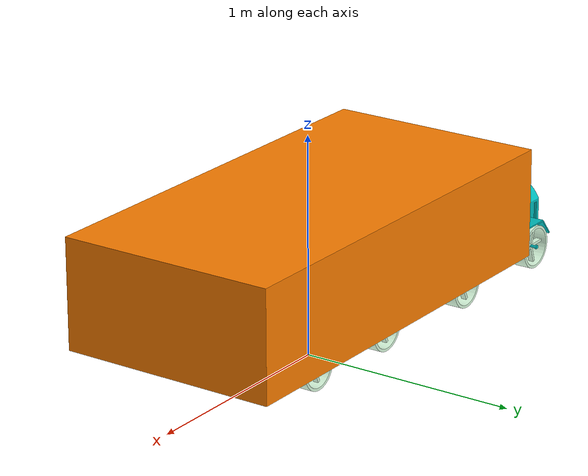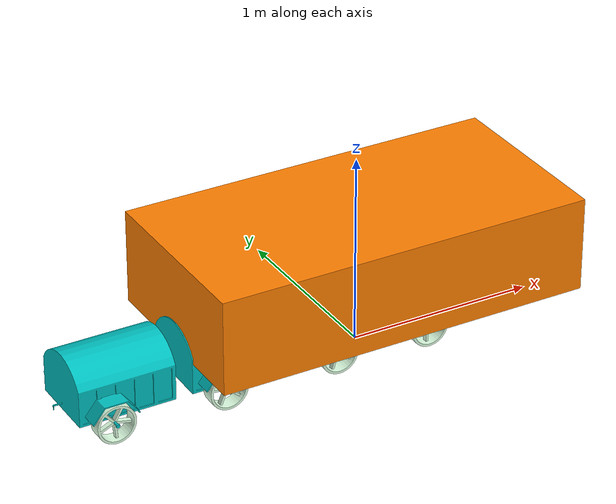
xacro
<?xml version="1.0" ?>
<robot name="car_2trailers" xmlns:xacro="http://ros.org/wiki/xacro">
  <link
    name="base_link">
    <inertial>
      <origin
        xyz="-0.0249685047950147 5.80525389981545E-08 0.308263797377902"
        rpy="0 0 0" />
      <mass
        value="161.296548099246" />
      <inertia
        ixx="5.74333133466386"
        ixy="-9.54396368857945E-07"
        ixz="0.715979259888364"
        iyy="11.1969077807859"
        iyz="2.58090746431264E-07"
        izz="11.8625970706263" />
    </inertial>
    <visual>
      <origin
        xyz="0 0 0.5"
        rpy="0 0 0" />
      <geometry>
        <box size="2.0 1.0 0.5"/>
      </geometry>
      <material
        name="bright_orange">
        <color
          rgba="1 0.5 0 1" />
      </material>
    </visual>
    <visual>
      <origin
        xyz="0 0 0"
        rpy="0 0 0" />
      <geometry>
        <mesh
          filename="file:///home/shanthosh/Downloads/ros2_ws/install/car_trailer/share/car_trailer/meshes/base_link.STL" />
      </geometry>
      <material
        name="">
        <color
          rgba="0.486274509803922 0.235294117647059 0.0156862745098039 1" />
      </material>
    </visual>
    <collision>
      <origin
        xyz="0 0 0"
        rpy="0 0 0" />
      <geometry>
        <mesh
          filename="file:///home/shanthosh/Downloads/ros2_ws/install/car_trailer/share/car_trailer/meshes/base_link.STL" />
      </geometry>
    </collision>
  </link>
  <link
    name="steer_right">
    <inertial>
      <origin
        xyz="0 0 -0.0522691419902046"
        rpy="0 0 0" />
      <mass
        value="0.0438861509536143" />
      <inertia
        ixx="0.000179638239128964"
        ixy="-3.09530314377121E-21"
        ixz="-3.82144225880298E-21"
        iyy="0.000124795414810826"
        iyz="-4.4765319312341E-20"
        izz="5.58982217166399E-05" />
    </inertial>
    <visual>
      <origin
        xyz="0 0 0"
        rpy="0 0 0" />
      <geometry>
        <mesh
          filename="file:///home/shanthosh/Downloads/ros2_ws/install/car_trailer/share/car_trailer/meshes/steer_right.STL" />
      </geometry>
      <material
        name="">
        <color
          rgba="0.792156862745098 0.819607843137255 0.933333333333333 1" />
      </material>
    </visual>
    <collision>
      <origin
        xyz="0 0 0"
        rpy="0 0 0" />
      <geometry>
        <mesh
          filename="file:///home/shanthosh/Downloads/ros2_ws/install/car_trailer/share/car_trailer/meshes/steer_right.STL" />
      </geometry>
    </collision>
  </link>
  <joint
    name="steer_right_joint"
    type="continuous">
    <origin
      xyz="0.2834 -0.2159 0.2159"
      rpy="0 0 0" />
    <parent
      link="base_link" />
    <child
      link="steer_right" />
    <axis
      xyz="0 0 1" />
  </joint>
  <link
    name="wheel_front_right">
    <inertial>
      <origin
        xyz="-1.11022302462516E-16 -2.22044604925031E-16 2.22044604925031E-16"
        rpy="0 0 0" />
      <mass
        value="0.710749711059187" />
      <inertia
        ixx="0.00311542211207417"
        ixy="-4.40252816370023E-19"
        ixz="4.89078291990205E-19"
        iyy="0.00565621280352888"
        iyz="-1.08879834757985E-19"
        izz="0.00311542211207417" />
    </inertial>
    <visual>
      <origin
        xyz="0 0 0"
        rpy="0 0 0" />
      <geometry>
        <mesh
          filename="file:///home/shanthosh/Downloads/ros2_ws/install/car_trailer/share/car_trailer/meshes/wheel_front_right.STL" />
      </geometry>
      <material
        name="">
        <color
          rgba="0.866666666666667 1 0.886274509803922 1" />
      </material>
    </visual>
    <collision>
      <origin
        xyz="0 0 0"
        rpy="0 0 0" />
      <geometry>
        <mesh
          filename="file:///home/shanthosh/Downloads/ros2_ws/install/car_trailer/share/car_trailer/meshes/wheel_front_right.STL" />
      </geometry>
    </collision>
  </link>
  <joint
    name="wheel_front_right_joint"
    type="continuous">
    <origin
      xyz="0 0 -0.1143"
      rpy="0 0 0" />
    <parent
      link="steer_right" />
    <child
      link="wheel_front_right" />
    <axis
      xyz="0 1 0" />
  </joint>
  <link
    name="steer_left">
    <inertial>
      <origin
        xyz="5.55111512312578E-17 0 -0.0522691419902048"
        rpy="0 0 0" />
      <mass
        value="0.0438861509536144" />
      <inertia
        ixx="0.000179638239128965"
        ixy="6.67787778044852E-21"
        ixz="1.53045847137605E-20"
        iyy="0.000124795414810826"
        iyz="1.34882992606323E-19"
        izz="5.58982217166401E-05" />
    </inertial>
    <visual>
      <origin
        xyz="0 0 0"
        rpy="0 0 0" />
      <geometry>
        <mesh
          filename="file:///home/shanthosh/Downloads/ros2_ws/install/car_trailer/share/car_trailer/meshes/steer_left.STL" />
      </geometry>
      <material
        name="">
        <color
          rgba="0.792156862745098 0.819607843137255 0.933333333333333 1" />
      </material>
    </visual>
    <collision>
      <origin
        xyz="0 0 0"
        rpy="0 0 0" />
      <geometry>
        <mesh
          filename="file:///home/shanthosh/Downloads/ros2_ws/install/car_trailer/share/car_trailer/meshes/steer_left.STL" />
      </geometry>
    </collision>
  </link>
  <joint
    name="steer_left_joint"
    type="continuous">
    <origin
      xyz="0.2834 0.2159 0.2159"
      rpy="0 0 0" />
    <parent
      link="base_link" />
    <child
      link="steer_left" />
    <axis
      xyz="0 0 1" />
  </joint>
  <link
    name="wheel_front_left">
    <inertial>
      <origin
        xyz="2.22044604925031E-16 -2.22044604925031E-16 3.33066907387547E-16"
        rpy="0 0 0" />
      <mass
        value="0.710749711059188" />
      <inertia
        ixx="0.00311542211207417"
        ixy="-1.78653899417237E-15"
        ixz="1.5015938906646E-18"
        iyy="0.00565621280352888"
        iyz="1.47159856276961E-19"
        izz="0.00311542211207417" />
    </inertial>
    <visual>
      <origin
        xyz="0 0 0"
        rpy="0 0 0" />
      <geometry>
        <mesh
          filename="file:///home/shanthosh/Downloads/ros2_ws/install/car_trailer/share/car_trailer/meshes/wheel_front_left.STL" />
      </geometry>
      <material
        name="">
        <color
          rgba="0.866666666666667 1 0.886274509803922 1" />
      </material>
    </visual>
    <collision>
      <origin
        xyz="0 0 0"
        rpy="0 0 0" />
      <geometry>
        <mesh
          filename="file:///home/shanthosh/Downloads/ros2_ws/install/car_trailer/share/car_trailer/meshes/wheel_front_left.STL" />
      </geometry>
    </collision>
  </link>
  <joint
    name="wheel_front_left_joint"
    type="continuous">
    <origin
      xyz="0 0 -0.1143"
      rpy="0 0 0" />
    <parent
      link="steer_left" />
    <child
      link="wheel_front_left" />
    <axis
      xyz="0 1 0" />
  </joint>
  <link
    name="wheel_rear_right">
    <inertial>
      <origin
        xyz="0 0 -2.22044604925031E-16"
        rpy="0 0 0" />
      <mass
        value="0.710749711059187" />
      <inertia
        ixx="0.00311542211207416"
        ixy="5.681866557744E-20"
        ixz="-7.15097397214017E-19"
        iyy="0.00565621280352888"
        iyz="1.34632008984562E-19"
        izz="0.00311542211207417" />
    </inertial>
    <visual>
      <origin
        xyz="0 0 0"
        rpy="0 0 0" />
      <geometry>
        <mesh
          filename="file:///home/shanthosh/Downloads/ros2_ws/install/car_trailer/share/car_trailer/meshes/wheel_rear_right.STL" />
      </geometry>
      <material
        name="">
        <color
          rgba="0.866666666666667 1 0.886274509803922 1" />
      </material>
    </visual>
    <collision>
      <origin
        xyz="0 0 0"
        rpy="0 0 0" />
      <geometry>
        <mesh
          filename="file:///home/shanthosh/Downloads/ros2_ws/install/car_trailer/share/car_trailer/meshes/wheel_rear_right.STL" />
      </geometry>
    </collision>
  </link>
  <joint
    name="wheel_rear_right_joint"
    type="continuous">
    <origin
      xyz="-0.23095 -0.21641 0.1016"
      rpy="0 0 0" />
    <parent
      link="base_link" />
    <child
      link="wheel_rear_right" />
    <axis
      xyz="0 1 0" />
  </joint>
  <link
    name="wheel_rear_left">
    <inertial>
      <origin
        xyz="-1.11022302462516E-16 2.22044604925031E-16 -2.22044604925031E-16"
        rpy="0 0 0" />
      <mass
        value="0.710749711059188" />
      <inertia
        ixx="0.00311542211207416"
        ixy="7.07076336508181E-20"
        ixz="3.24668390427075E-19"
        iyy="0.00565621280352888"
        iyz="4.18630405641039E-19"
        izz="0.00311542211207417" />
    </inertial>
    <visual>
      <origin
        xyz="0 0 0"
        rpy="0 0 0" />
      <geometry>
        <mesh
          filename="file:///home/shanthosh/Downloads/ros2_ws/install/car_trailer/share/car_trailer/meshes/wheel_rear_left.STL" />
      </geometry>
      <material
        name="">
        <color
          rgba="0.866666666666667 1 0.886274509803922 1" />
      </material>
    </visual>
    <collision>
      <origin
        xyz="0 0 0"
        rpy="0 0 0" />
      <geometry>
        <mesh
          filename="file:///home/shanthosh/Downloads/ros2_ws/install/car_trailer/share/car_trailer/meshes/wheel_rear_left.STL" />
      </geometry>
    </collision>
  </link>
  <joint
    name="wheel_rear_left_joint"
    type="continuous">
    <origin
      xyz="-0.23095 0.21641 0.1016"
      rpy="0 0 0" />
    <parent
      link="base_link" />
    <child
      link="wheel_rear_left" />
    <axis
      xyz="0 1 0" />
  </joint>
  <link
    name="lidar">
    <inertial>
      <origin
        xyz="0 0 0.0155633315213304"
        rpy="0 0 0" />
      <mass
        value="0.00148787861234503" />
      <inertia
        ixx="7.10305155736843E-08"
        ixy="5.87747175411144E-39"
        ixz="-1.65931870492747E-24"
        iyy="7.10305155736843E-08"
        iyz="3.73107524658215E-25"
        izz="1.94149419263025E-08" />
    </inertial>
    <visual>
      <origin
        xyz="0 0 0"
        rpy="0 0 0" />
      <geometry>
        <mesh
          filename="file:///home/shanthosh/Downloads/ros2_ws/install/car_trailer/share/car_trailer/meshes/lidar.STL" />
      </geometry>
      <material
        name="">
        <color
          rgba="1 0.831372549019608 0.0235294117647059 1" />
      </material>
    </visual>
    <collision>
      <origin
        xyz="0 0 0"
        rpy="0 0 0" />
      <geometry>
        <mesh
          filename="file:///home/shanthosh/Downloads/ros2_ws/install/car_trailer/share/car_trailer/meshes/lidar.STL" />
      </geometry>
    </collision>
  </link>
  <joint
    name="lidar_joint"
    type="prismatic">
    <origin
      xyz="-0.29518 0 0.5461"
      rpy="0 0 0" />
    <parent
      link="base_link" />
    <child
      link="lidar" />
    <axis
      xyz="0 1 0" />
    <limit
      lower="0"
      upper="0"
      effort="0"
      velocity="0" />
  </joint>
  <link
    name="trailer1">
    <inertial>
      <origin
        xyz="-0.299194633208472 -0.0013676434638723 0.116239025047718"
        rpy="0 0 0" />
      <mass
        value="51.8326464514157" />
      <inertia
        ixx="0.895288907489371"
        ixy="0.000190753586197387"
        ixz="-0.00176941019689681"
        iyy="1.45980983595813"
        iyz="-0.00311107541004565"
        izz="1.6642326822303" />
    </inertial>
    <visual>
      <origin
        xyz="0 0 0"
        rpy="0 0 0" />
      <geometry>
        <mesh
          filename="file:///home/shanthosh/Downloads/ros2_ws/install/car_trailer/share/car_trailer/meshes/trailer1.STL" />
      </geometry>
      <material
        name="">
        <color
          rgba="0 0.752941176470588 0.752941176470588 1" />
      </material>
    </visual>
    <collision>
      <origin
        xyz="0 0 0"
        rpy="0 0 0" />
      <geometry>
        <mesh
          filename="file:///home/shanthosh/Downloads/ros2_ws/install/car_trailer/share/car_trailer/meshes/trailer1.STL" />
      </geometry>
    </collision>
  </link>
  <joint
    name="trailer1_joint"
    type="continuous">
    <origin
      xyz="-0.4532 0 0.11113"
      rpy="0 0 0" />
    <parent
      link="base_link" />
    <child
      link="trailer1" />
    <axis
      xyz="0 0 1" />
  </joint>
  <link
    name="wheel_trailer1_left">
    <inertial>
      <origin
        xyz="2.22044604925031E-16 0 -3.33066907387547E-16"
        rpy="0 0 0" />
      <mass
        value="0.710749711059187" />
      <inertia
        ixx="0.00311542211207416"
        ixy="-9.29687483492787E-19"
        ixz="1.25121407406303E-18"
        iyy="0.00565621280352888"
        iyz="-1.28392553042862E-19"
        izz="0.00311542211207417" />
    </inertial>
    <visual>
      <origin
        xyz="0 0 0"
        rpy="0 0 0" />
      <geometry>
        <mesh
          filename="file:///home/shanthosh/Downloads/ros2_ws/install/car_trailer/share/car_trailer/meshes/wheel_trailer1_left.STL" />
      </geometry>
      <material
        name="">
        <color
          rgba="0.866666666666667 1 0.886274509803922 1" />
      </material>
    </visual>
    <collision>
      <origin
        xyz="0 0 0"
        rpy="0 0 0" />
      <geometry>
        <mesh
          filename="file:///home/shanthosh/Downloads/ros2_ws/install/car_trailer/share/car_trailer/meshes/wheel_trailer1_left.STL" />
      </geometry>
    </collision>
  </link>
  <joint
    name="wheel_trailer1_left_joint"
    type="continuous">
    <origin
      xyz="-0.39687 0.23495 -0.009525"
      rpy="0 0 0" />
    <parent
      link="trailer1" />
    <child
      link="wheel_trailer1_left" />
    <axis
      xyz="0 1 0" />
  </joint>
  <link
    name="wheel_trailer1_right">
    <inertial>
      <origin
        xyz="0 0 -1.11022302462516E-16"
        rpy="0 0 0" />
      <mass
        value="0.710749711059187" />
      <inertia
        ixx="0.00311542211207416"
        ixy="9.53813651772148E-19"
        ixz="1.15308977389893E-18"
        iyy="0.00565621280352887"
        iyz="9.55241922176197E-20"
        izz="0.00311542211207416" />
    </inertial>
    <visual>
      <origin
        xyz="0 0 0"
        rpy="0 0 0" />
      <geometry>
        <mesh
          filename="file:///home/shanthosh/Downloads/ros2_ws/install/car_trailer/share/car_trailer/meshes/wheel_trailer1_right.STL" />
      </geometry>
      <material
        name="">
        <color
          rgba="0.866666666666667 1 0.886274509803922 1" />
      </material>
    </visual>
    <collision>
      <origin
        xyz="0 0 0"
        rpy="0 0 0" />
      <geometry>
        <mesh
          filename="file:///home/shanthosh/Downloads/ros2_ws/install/car_trailer/share/car_trailer/meshes/wheel_trailer1_right.STL" />
      </geometry>
    </collision>
  </link>
  <joint
    name="wheel_trailer1_right_joint"
    type="continuous">
    <origin
      xyz="-0.39687 -0.23495 -0.009525"
      rpy="0 0 0" />
    <parent
      link="trailer1" />
    <child
      link="wheel_trailer1_right" />
    <axis
      xyz="0 1 0" />
  </joint>
  <link
    name="trailer2">
    <inertial>
      <origin
        xyz="-0.299194633208472 -0.0013676434638723 0.116239025047717"
        rpy="0 0 0" />
      <mass
        value="51.8326464514157" />
      <inertia
        ixx="0.895288907489373"
        ixy="0.000190753586197405"
        ixz="-0.00176941019689734"
        iyy="1.45980983595813"
        iyz="-0.0031110754100455"
        izz="1.6642326822303" />
    </inertial>
    <visual>
      <origin
        xyz="0 0 0"
        rpy="0 0 0" />
      <geometry>
        <mesh
          filename="file:///home/shanthosh/Downloads/ros2_ws/install/car_trailer/share/car_trailer/meshes/trailer2.STL" />
      </geometry>
      <material
        name="">
        <color
          rgba="0 0.752941176470588 0.752941176470588 1" />
      </material>
    </visual>
    <collision>
      <origin
        xyz="0 0 0"
        rpy="0 0 0" />
      <geometry>
        <mesh
          filename="file:///home/shanthosh/Downloads/ros2_ws/install/car_trailer/share/car_trailer/meshes/trailer2.STL" />
      </geometry>
    </collision>
  </link>
  <joint
    name="trailer2_joint"
    type="continuous">
    <origin
      xyz="-0.5969 0 0"
      rpy="0 0 0" />
    <parent
      link="trailer1" />
    <child
      link="trailer2" />
    <axis
      xyz="0 0 1" />
  </joint>
  <link
    name="wheel_trailer2_left">
    <inertial>
      <origin
        xyz="0 0 -1.11022302462516E-16"
        rpy="0 0 0" />
      <mass
        value="0.710749711059187" />
      <inertia
        ixx="0.00311542211207416"
        ixy="-1.00530769970328E-18"
        ixz="3.06677373662752E-19"
        iyy="0.00565621280352888"
        iyz="-2.81053420512363E-19"
        izz="0.00311542211207417" />
    </inertial>
    <visual>
      <origin
        xyz="0 0 0"
        rpy="0 0 0" />
      <geometry>
        <mesh
          filename="file:///home/shanthosh/Downloads/ros2_ws/install/car_trailer/share/car_trailer/meshes/wheel_trailer2_left.STL" />
      </geometry>
      <material
        name="">
        <color
          rgba="0.866666666666667 1 0.886274509803922 1" />
      </material>
    </visual>
    <collision>
      <origin
        xyz="0 0 0"
        rpy="0 0 0" />
      <geometry>
        <mesh
          filename="file:///home/shanthosh/Downloads/ros2_ws/install/car_trailer/share/car_trailer/meshes/wheel_trailer2_left.STL" />
      </geometry>
    </collision>
  </link>
  <joint
    name="wheel_trailer2_left_joint"
    type="continuous">
    <origin
      xyz="-0.39687 0.23495 -0.009525"
      rpy="0 0 0" />
    <parent
      link="trailer2" />
    <child
      link="wheel_trailer2_left" />
    <axis
      xyz="0 1 0" />
  </joint>
  <link
    name="wheel_trailer2_right">
    <inertial>
      <origin
        xyz="0 0 -3.33066907387547E-16"
        rpy="0 0 0" />
      <mass
        value="0.710749711059187" />
      <inertia
        ixx="0.00311542211207416"
        ixy="1.23233688868645E-18"
        ixz="-2.35125830624258E-18"
        iyy="0.00565621280352887"
        iyz="1.04752245533076E-19"
        izz="0.00311542211207417" />
    </inertial>
    <visual>
      <origin
        xyz="0 0 0"
        rpy="0 0 0" />
      <geometry>
        <mesh
          filename="file:///home/shanthosh/Downloads/ros2_ws/install/car_trailer/share/car_trailer/meshes/wheel_trailer2_right.STL" />
      </geometry>
      <material
        name="">
        <color
          rgba="0.866666666666667 1 0.886274509803922 1" />
      </material>
    </visual>
    <collision>
      <origin
        xyz="0 0 0"
        rpy="0 0 0" />
      <geometry>
        <mesh
          filename="file:///home/shanthosh/Downloads/ros2_ws/install/car_trailer/share/car_trailer/meshes/wheel_trailer2_right.STL" />
      </geometry>
    </collision>
  </link>
  <joint
    name="wheel_trailer2_right_joint"
    type="continuous">
    <origin
      xyz="-0.39687 -0.23495 -0.009525"
      rpy="0 0 0" />
    <parent
      link="trailer2" />
    <child
      link="wheel_trailer2_right" />
    <axis
      xyz="0 1 0" />
  </joint>

  <!-- Gazebo material properties for visualization -->
  <gazebo reference="base_link">
    <material>Gazebo/Orange</material>
  </gazebo>

  <gazebo reference="steer_left">
    <material>Gazebo/Grey</material>
  </gazebo>

  <gazebo reference="steer_right">
    <material>Gazebo/Grey</material>
  </gazebo>

  <gazebo reference="wheel_front_left">
    <material>Gazebo/Black</material>
  </gazebo>

  <gazebo reference="wheel_front_right">
    <material>Gazebo/Black</material>
  </gazebo>

  <gazebo reference="wheel_rear_left">
    <material>Gazebo/Black</material>
  </gazebo>

  <gazebo reference="wheel_rear_right">
    <material>Gazebo/Black</material>
  </gazebo>

  <gazebo reference="lidar">
    <material>Gazebo/Blue</material>
  </gazebo>

  <gazebo reference="trailer1">
    <material>Gazebo/Yellow</material>
  </gazebo>

  <gazebo reference="wheel_trailer1_left">
    <material>Gazebo/Black</material>
  </gazebo>

  <gazebo reference="wheel_trailer1_right">
    <material>Gazebo/Black</material>
  </gazebo>

  <gazebo reference="trailer2">
    <material>Gazebo/Red</material>
  </gazebo>

  <gazebo reference="wheel_trailer2_left">
    <material>Gazebo/Black</material>
  </gazebo>

  <gazebo reference="wheel_trailer2_right">
    <material>Gazebo/Black</material>
  </gazebo>

  <!-- Gazebo Differential Drive Plugin -->
  <gazebo>
    <plugin name="differential_drive_controller" filename="libgazebo_ros_diff_drive.so">
      <!-- Update rate in Hz -->
      <update_rate>50</update_rate>

      <!-- wheels -->
      <left_joint>wheel_rear_left_joint</left_joint>
      <right_joint>wheel_rear_right_joint</right_joint>

      <!-- kinematics -->
      <wheel_separation>0.5</wheel_separation>
      <wheel_diameter>0.2</wheel_diameter>

      <!-- limits -->
      <max_wheel_torque>20</max_wheel_torque>
      <max_wheel_acceleration>1.0</max_wheel_acceleration>

      <!-- output -->
      <publish_odom>true</publish_odom>
      <publish_odom_tf>true</publish_odom_tf>
      <publish_wheel_tf>false</publish_wheel_tf>

      <odometry_frame>odom</odometry_frame>
      <robot_base_frame>base_link</robot_base_frame>

      <!-- Topic to receive geometry_msgs/Twist message commands -->
      <command_topic>cmd_vel</command_topic>

      <!-- Topic to publish nav_msgs/Odometry messages -->
      <odometry_topic>odom</odometry_topic>
    </plugin>
  </gazebo>

</robot>
